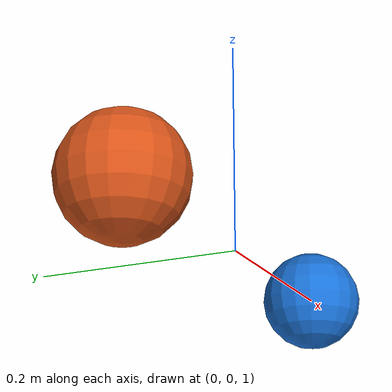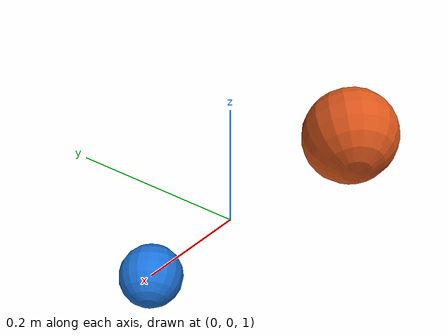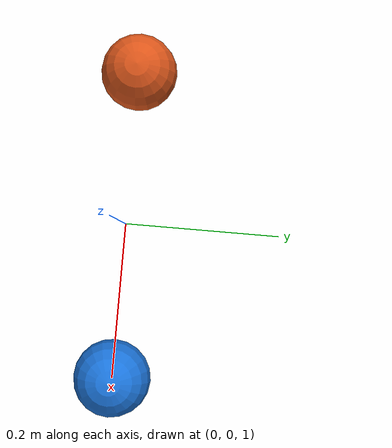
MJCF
<mujoco model="ball_drop">
  <compiler angle="radian" autolimits="true"/>
  <option timestep="0.002" gravity="0 0 -9.81"/>

  <visual>
    <global offwidth="640" offheight="480"/>
  </visual>

  <asset>
    <texture name="grid" type="2d" builtin="checker" rgb1=".86 .88 .86" rgb2=".78 .80 .78" width="256" height="256"/>
    <material name="grid" texture="grid" texrepeat="8 8" reflectance="0"/>
  </asset>

  <worldbody>
    <light pos="0 0 3" dir="0 0 -1" diffuse=".8 .8 .8"/>
    <geom name="floor" type="plane" size="2 2 0.05" material="grid"/>

    <!-- A free joint gives the body 6 DOF: nq = 7 (position + unit quaternion), nv = 6. -->
    <body name="heavy" pos="-0.2 0 1.0">
      <freejoint name="heavy_free"/>
      <geom name="heavy_geom" type="sphere" size="0.05" mass="2.0" rgba=".85 .33 .1 1"/>
    </body>

    <body name="light" pos="0.2 0 1.0">
      <freejoint name="light_free"/>
      <geom name="light_geom" type="sphere" size="0.05" mass="0.1" rgba=".1 .45 .85 1"/>
    </body>
  </worldbody>

  <sensor>
    <framepos name="heavy_pos" objtype="body" objname="heavy"/>
    <framepos name="light_pos" objtype="body" objname="light"/>
  </sensor>
</mujoco>
